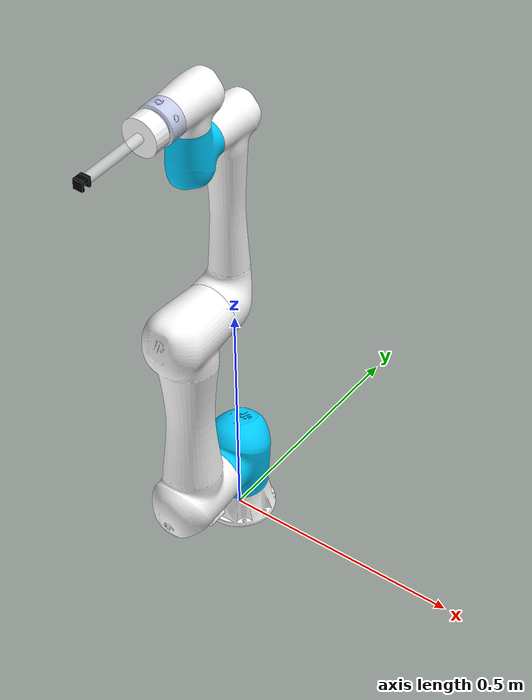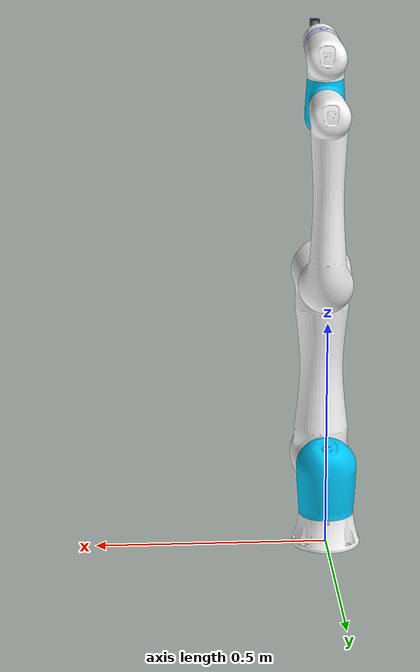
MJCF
<!--jk5+连接件环境，用于开关实验-->
<mujoco model="jk5">
    <asset>
        <mesh name="base_link" file="base_link.STL" />
        <mesh name="link1" file="link1.STL" />
        <mesh name="link2" file="link2.STL" />
        <mesh name="link3" file="link3.STL" />
        <mesh name="link4" file="link4.STL" />
        <mesh name="link5" file="link5.STL" />
        <mesh name="link6" file="link6.STL" />
    </asset>
    <worldbody>
        <body name="jk5" pos="0 0 0">
            <body name="base_link" pos="0 0 0">
                <geom type="mesh" contype="0" conaffinity="0" rgba="1 1 1 1" mesh="base_link"/>
                <body name="link1" pos="0 0 0.069">
                    <geom type="mesh" contype="0" conaffinity="0" rgba="0 0.8 1 1" mesh="link1"/>
                    <joint name="joint1" pos="0 0 0" axis="0 0 1" limited="true" range="-3.14 3.14"/>
                    <inertial pos="-3.8005e-05 -0.0024889 0.054452" quat="0.696512 0.0244353 -0.0262529 0.716648"
                              mass="4.27" diaginertia="0.0214324 0.0213196 0.00795099"/>
                    <body name="link2" pos="0 0 0.073" quat="0.707106781 0.707106781 0 0">
                        <geom type="mesh" contype="0" conaffinity="0" rgba="1 1 1 1" mesh="link2"/>
                        <joint name="joint2" pos="0 0 0" axis="0 0 1" limited="true" range="-3.14 3.14"/>
                        <inertial pos="0 0.21252 0.12053" quat="0.414451 0.57284 0.573072 0.414334"
                                  mass="10.1" diaginertia="1.01715 0.953511 0.0834946"/>
                        <body name="link3" pos="0 0.425 0" quat="0.707106781 0 0 0.707106781">
                            <geom type="mesh" contype="0" conaffinity="0" rgba="1 1 1 1" mesh="link3"/>
                            <joint name="joint3" pos="0 0 0" axis="0 0 1" limited="true" range="-3.14 3.14"/>
                            <inertial pos="0.27205 1.9634e-05 0.023591" quat="0.482588 0.516912 0.516005 0.483374"
                                      mass="2.61" diaginertia="0.262358 0.261811 0.0036704"/>
                            <body name="link4" pos="0.395 0 0">
                                <geom type="mesh" contype="0" conaffinity="0" rgba="0 0.8 1 1" mesh="link4"/>
                                <joint name="joint4" pos="0 0 0" axis="0 0 1" limited="true" range="-3.14 3.14"/>
                                <inertial pos="3.0707e-05 -0.015152 0.11185" quat="0.997531 0.0701668 0.000322345 -0.00295604"
                                          mass="1.45" diaginertia="0.0201018 0.0196889 0.00158379"/>
                                <body name="link5" pos="0 0 0.1135" quat="0.5 -0.5 0.5 -0.5">
                                    <geom type="mesh" contype="0" conaffinity="0" rgba="1 1 1 1" mesh="link5"/>
                                    <joint name="joint5" pos="0 0 0" axis="0 0 1" limited="true" range="-3.14 3.14"/>
                                    <inertial pos="-3.0707e-05 0.015152 0.099848"  quat="0.704002 -0.0654372 0.0666836 0.704026"
                                              mass="1.45" diaginertia="0.0057004 0.0057004 0.0057004"/>
                                    <body name="link6" pos="0 0 0.1015" quat="0.707106781 0.707106781 0 0">
                                        <geom type="mesh" contype="0" conaffinity="0" rgba="0.79216 0.81961 0.93333 1" mesh="link6"/>
                                        <joint name="joint6" pos="0 0 0" axis="0 0 1" limited="true" range="-3.14 3.14"/>
                                        <inertial pos="0 0.00058691 0.072051" quat="0.999992 -0.00407703 0 0"
                                                  mass="0.21" diaginertia="0.00128044 0.00120857 0.000194485"/>
                                        <!--机器人末端位置，re for robot end-->
                                        <site name="re" pos="0 0 0" rgba="1 0 0 0" size="0.03 0.03 0.03" type="box"/>
                                        <!--执行器-->
                                        <body name="ee_link" pos="0 0 0.094">
                                            <geom name="ft_sensor" type="cylinder" rgba="1 1 1 1" fromto="0 0 0  0 0 0.034" size="0.0375"/>
                                            <geom name="stick" type="cylinder" rgba="1 1 1 0.5" pos="0 0 0.0845" size="0.01 0.0845"
                                                  contype="0" conaffinity="0"/>
                                            <inertial pos="0 0 0.015" mass="0.424"
                                                      diaginertia="0.00019875 0.00019875 0.00019080"/>
                                            <!--执行器末端位置-->
                                            <site name="ee" pos="0 0 0.169" rgba="1 0 0 0" size="0.01 0.01 0.01" type="sphere"/>
                                            <!--ee_link与link6，力传感器的力-->
                                            <site name="nft_sensor" pos="0 0 0" rgba="1 0 0 0" size="0.01 0.01 0.01" type="sphere"/>
                                            <!--tip与ee_link，接触点的力，专门定义dummy_body-->
                                            <body name="dummy_body" pos="0 0 0.169">
                                                <geom pos="0 0 0.0025" size=".01 .01 .0025" type="box" rgba="0 0 0 1"/>
                                                <geom pos="0 0 0.0195" size=".01 .01 .0025" type="box" rgba="0 0 0 1"/>
                                                <geom pos="0 0.006 0.011" size=".01 .004 .006" type="box" rgba="0 0 0 1"/>
                                                <inertial pos="0 0 0" mass="0.000000001" diaginertia="0.000000001 0.000000001 0.000000001"/>
                                                <site name="contact_sensor" pos="0 0 0" rgba="1 0 0 0" size="0.0005 0.0005 0.0005" type="sphere"/>
                                            </body>
                                        </body>
                                    </body>
                                </body>
                            </body>
                        </body>
                    </body>
                </body>
            </body>
        </body>
    </worldbody>
    <actuator>
        <motor name='motor1' ctrllimited="true" ctrlrange="-500 500" joint='joint1' gear="1"/>
        <motor name='motor2' ctrllimited="true" ctrlrange="-500 500" joint='joint2' gear="1"/>
        <motor name='motor3' ctrllimited="true" ctrlrange="-500 500" joint='joint3' gear="1"/>
        <motor name='motor4' ctrllimited="true" ctrlrange="-500 500" joint='joint4' gear="1"/>
        <motor name='motor5' ctrllimited="true" ctrlrange="-500 500" joint='joint5' gear="1"/>
        <motor name='motor6' ctrllimited="true" ctrlrange="-500 500" joint='joint6' gear="1"/>
    </actuator>
    <sensor>
        <!--检测接触点的力与力矩-->
        <force name="contact_force" site="contact_sensor"/>
        <torque name="contact_torque" site="contact_sensor"/>
        <touch name="contact_touch" site="contact_sensor"/>
        <!--检测nft传感器的力与力矩-->
        <force name="nft_force" site="nft_sensor"/>
        <torque name="nft_torque" site="nft_sensor"/>
    </sensor>
</mujoco>
